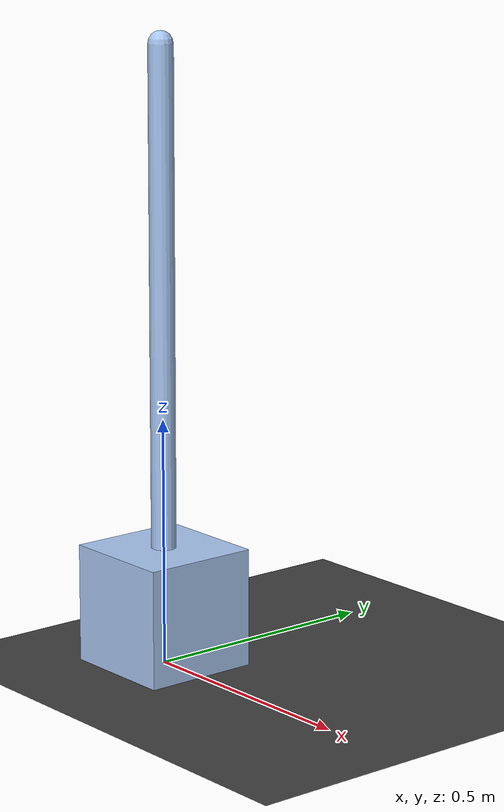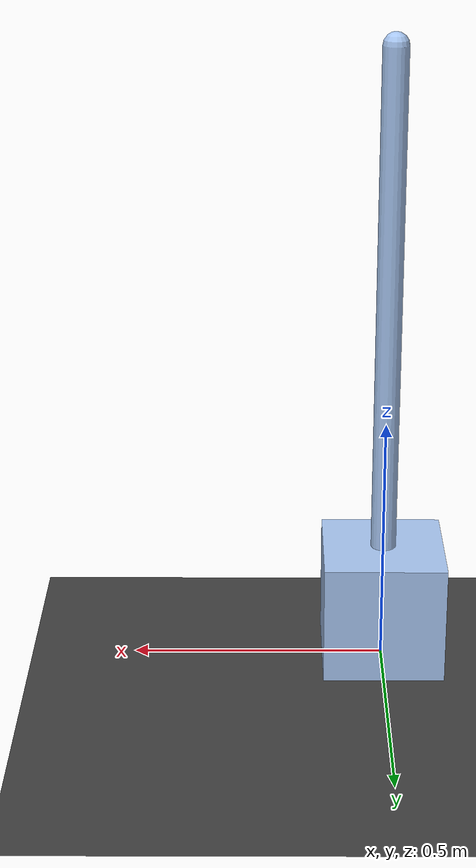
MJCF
<mujoco model="gobot_cartpole">
  <compiler angle="radian" autolimits="true"/>
  <option timestep="0.004166666666666667" integrator="RK4" gravity="0 0 -9.81"/>

  <default>
    <joint damping="0" armature="0"/>
    <geom friction="0.8 0.1 0.1" density="1000"/>
  </default>

  <worldbody>
    <geom name="floor" type="plane" size="4 1 0.05" rgba="0.25 0.25 0.25 1"/>
    <body name="cart" pos="0 0 0.12">
      <joint name="slider" type="slide" axis="1 0 0" range="-2.4 2.4" limited="true"/>
      <geom name="cart_box" type="box" size="0.12 0.12 0.12" mass="1.0" rgba="0.66 0.78 0.95 1"/>
      <body name="pole" pos="0 0 0.12">
        <joint name="hinge" type="hinge" axis="0 1 0" limited="false"/>
        <geom name="pole_capsule" type="capsule" fromto="0 0 0 0 0 1.0" size="0.025" mass="0.1" rgba="0.66 0.78 0.95 1"/>
      </body>
    </body>
  </worldbody>

  <actuator>
    <motor name="cart_force" joint="slider" gear="1" ctrlrange="-3 3" ctrllimited="true"/>
    <motor name="pole_disturbance" joint="hinge" gear="1" ctrlrange="-0.2 0.2" ctrllimited="true"/>
  </actuator>
</mujoco>
